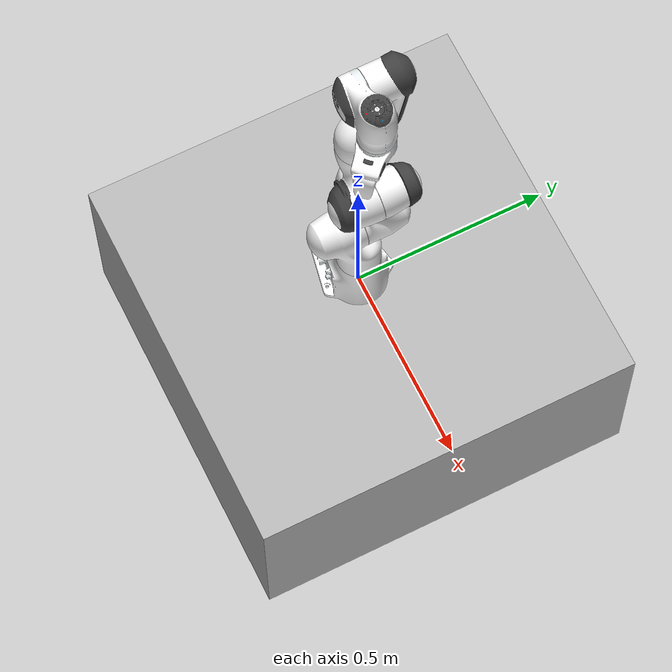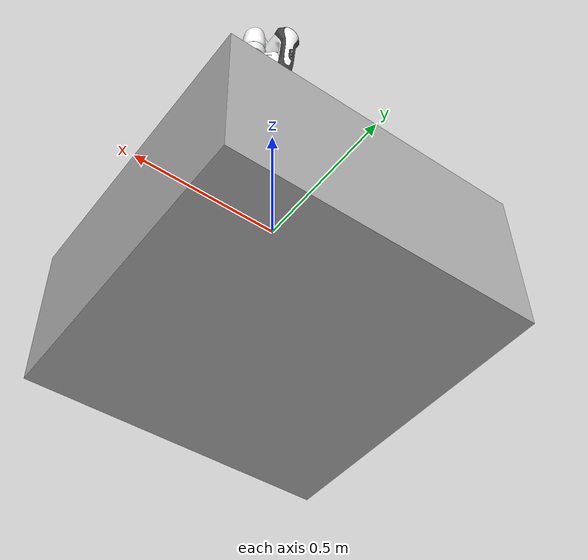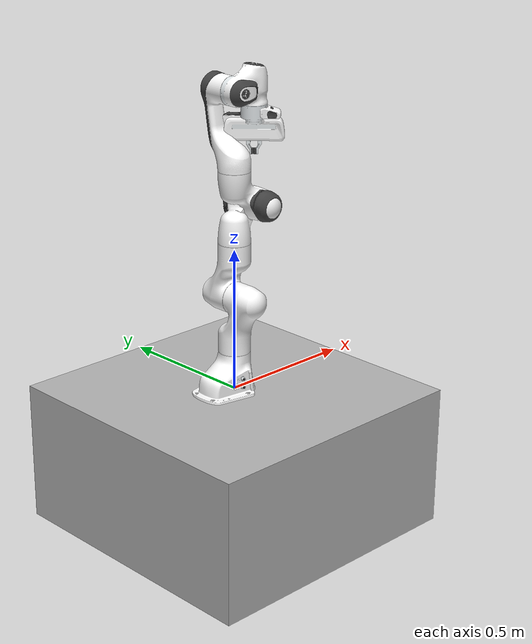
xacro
<?xml version="1.0" ?>
<robot name="panda" xmlns:xacro="http://www.ros.org/wiki/xacro">

    <xacro:arg name="ros2_control_hardware_type"                   default="${ros2_control_hardware_type}"/>
    <xacro:arg name="prefix"                                       default="panda_"/>
    <xacro:arg name="use_gripper"                                  default="true"/>
    <xacro:arg name="joint1_initial_position"                      default="0.0"/>
    <xacro:arg name="joint2_initial_position"                      default="-0.785"/>
    <xacro:arg name="joint3_initial_position"                      default="0.0"/>
    <xacro:arg name="joint4_initial_position"                      default="-2.356"/>
    <xacro:arg name="joint5_initial_position"                      default="0.0"/>
    <xacro:arg name="joint6_initial_position"                      default="1.571"/>
    <xacro:arg name="joint7_initial_position"                      default="0.785"/>
    <xacro:arg name="finger_joint1_initial_position"               default="0.0"/>
    <xacro:arg name="finger_joint2_initial_position"               default="0.0"/>

    <xacro:property name="ros2_control_hardware_type"              value="$(arg ros2_control_hardware_type)"/>
    <xacro:property name="prefix"                                  value="$(arg prefix)"/>
    <xacro:property name="use_gripper"                             value="$(arg use_gripper)"/>
    <xacro:property name="joint1_initial_position"                 value="$(arg joint1_initial_position)"/>
    <xacro:property name="joint2_initial_position"                 value="$(arg joint2_initial_position)"/>
    <xacro:property name="joint3_initial_position"                 value="$(arg joint3_initial_position)"/>
    <xacro:property name="joint4_initial_position"                 value="$(arg joint4_initial_position)"/>
    <xacro:property name="joint5_initial_position"                 value="$(arg joint5_initial_position)"/>
    <xacro:property name="joint6_initial_position"                 value="$(arg joint6_initial_position)"/>
    <xacro:property name="joint7_initial_position"                 value="$(arg joint7_initial_position)"/>
    <xacro:property name="finger_joint1_initial_position"          value="$(arg finger_joint1_initial_position)"/>
    <xacro:property name="finger_joint2_initial_position"          value="$(arg finger_joint2_initial_position)"/>

    <link name="world"/>
    <joint name="panda_world" type="fixed">
        <origin rpy="0 0 0" xyz="0 0 0.0" />
        <parent link="world" />
        <child link="panda_link0" />
    </joint>
    <link name="panda_link0">
        <visual>
            <geometry>
                <mesh filename="package://moveit_resources_panda_description/meshes/visual/link0.dae" />
            </geometry>
        </visual>
        <collision>
            <geometry>
                <mesh filename="package://moveit_resources_panda_description/meshes/collision/link0.stl" />
            </geometry>
        </collision>
        <inertial>
            <origin xyz="0 0 0" rpy="0 0 0" />
            <mass value="3.06357" />
            <inertia ixx="0.3" ixy="0.0" ixz="0.0" iyy="0.3" iyz="0.0" izz="0.3" />
        </inertial>
    </link>
    <link name="panda_link1">
        <visual>
            <geometry>
                <mesh filename="package://moveit_resources_panda_description/meshes/visual/link1.dae" />
            </geometry>
        </visual>
        <collision>
            <geometry>
                <mesh filename="package://moveit_resources_panda_description/meshes/collision/link1.stl" />
            </geometry>
        </collision>
        <inertial>
            <origin xyz="0 0 0" rpy="0 0 0" />
            <mass value="2.34471" />
            <inertia ixx="0.3" ixy="0.0" ixz="0.0" iyy="0.3" iyz="0.0" izz="0.3" />
        </inertial>
    </link>
    <joint name="panda_joint1" type="revolute">
        <safety_controller k_position="100.0" k_velocity="40.0" soft_lower_limit="-2.8973" soft_upper_limit="2.8973" />
        <origin rpy="0 0 0" xyz="0 0 0.333" />
        <parent link="panda_link0" />
        <child link="panda_link1" />
        <axis xyz="0 0 1" />
        <limit effort="87" lower="-2.9671" upper="2.9671" velocity="2.3925" />
    </joint>
    <link name="panda_link2">
        <visual>
            <geometry>
                <mesh filename="package://moveit_resources_panda_description/meshes/visual/link2.dae" />
            </geometry>
        </visual>
        <collision>
            <geometry>
                <mesh filename="package://moveit_resources_panda_description/meshes/collision/link2.stl" />
            </geometry>
        </collision>
        <inertial>
            <origin xyz="0 0 0" rpy="0 0 0" />
            <mass value="2.36414" />
            <inertia ixx="0.3" ixy="0.0" ixz="0.0" iyy="0.3" iyz="0.0" izz="0.3" />
        </inertial>
    </link>
    <joint name="panda_joint2" type="revolute">
        <safety_controller k_position="100.0" k_velocity="40.0" soft_lower_limit="-1.7628" soft_upper_limit="1.7628" />
        <origin rpy="-1.57079632679 0 0" xyz="0 0 0" />
        <parent link="panda_link1" />
        <child link="panda_link2" />
        <axis xyz="0 0 1" />
        <limit effort="87" lower="-1.8326" upper="1.8326" velocity="2.3925" />
    </joint>
    <link name="panda_link3">
        <visual>
            <geometry>
                <mesh filename="package://moveit_resources_panda_description/meshes/visual/link3.dae" />
            </geometry>
        </visual>
        <collision>
            <geometry>
                <mesh filename="package://moveit_resources_panda_description/meshes/collision/link3.stl" />
            </geometry>
        </collision>
        <inertial>
            <origin xyz="0 0 0" rpy="0 0 0" />
            <mass value="2.38050" />
            <inertia ixx="0.3" ixy="0.0" ixz="0.0" iyy="0.3" iyz="0.0" izz="0.3" />
        </inertial>
    </link>
    <joint name="panda_joint3" type="revolute">
        <safety_controller k_position="100.0" k_velocity="40.0" soft_lower_limit="-2.8973" soft_upper_limit="2.8973" />
        <origin rpy="1.57079632679 0 0" xyz="0 -0.316 0" />
        <parent link="panda_link2" />
        <child link="panda_link3" />
        <axis xyz="0 0 1" />
        <limit effort="87" lower="-2.9671" upper="2.9671" velocity="2.3925" />
    </joint>
    <link name="panda_link4">
        <visual>
            <geometry>
                <mesh filename="package://moveit_resources_panda_description/meshes/visual/link4.dae" />
            </geometry>
        </visual>
        <collision>
            <geometry>
                <mesh filename="package://moveit_resources_panda_description/meshes/collision/link4.stl" />
            </geometry>
        </collision>
        <inertial>
            <origin xyz="0 0 0" rpy="0 0 0" />
            <mass value="2.42754" />
            <inertia ixx="0.3" ixy="0.0" ixz="0.0" iyy="0.3" iyz="0.0" izz="0.3" />
        </inertial>
    </link>
    <joint name="panda_joint4" type="revolute">
        <safety_controller k_position="100.0" k_velocity="40.0" soft_lower_limit="-3.0718" soft_upper_limit="0.0175" />
        <origin rpy="1.57079632679 0 0" xyz="0.0825 0 0" />
        <parent link="panda_link3" />
        <child link="panda_link4" />
        <axis xyz="0 0 1" />
        <limit effort="87" lower="-3.1416" upper="0.0873" velocity="2.3925" />
    </joint>
    <link name="panda_link5">
        <visual>
            <geometry>
                <mesh filename="package://moveit_resources_panda_description/meshes/visual/link5.dae" />
            </geometry>
        </visual>
        <collision>
            <geometry>
                <mesh filename="package://moveit_resources_panda_description/meshes/collision/link5.stl" />
            </geometry>
        </collision>
        <inertial>
            <origin xyz="0 0 0" rpy="0 0 0" />
            <mass value="3.49611" />
            <inertia ixx="0.3" ixy="0.0" ixz="0.0" iyy="0.3" iyz="0.0" izz="0.3" />
        </inertial>
    </link>
    <joint name="panda_joint5" type="revolute">
        <safety_controller k_position="100.0" k_velocity="40.0" soft_lower_limit="-2.8973" soft_upper_limit="2.8973" />
        <origin rpy="-1.57079632679 0 0" xyz="-0.0825 0.384 0" />
        <parent link="panda_link4" />
        <child link="panda_link5" />
        <axis xyz="0 0 1" />
        <limit effort="12" lower="-2.9671" upper="2.9671" velocity="2.8710" />
    </joint>
    <link name="panda_link6">
        <visual>
            <geometry>
                <mesh filename="package://moveit_resources_panda_description/meshes/visual/link6.dae" />
            </geometry>
        </visual>
        <collision>
            <geometry>
                <mesh filename="package://moveit_resources_panda_description/meshes/collision/link6.stl" />
            </geometry>
        </collision>
        <inertial>
            <origin xyz="0 0 0" rpy="0 0 0" />
            <mass value="1.46736" />
            <inertia ixx="0.3" ixy="0.0" ixz="0.0" iyy="0.3" iyz="0.0" izz="0.3" />
        </inertial>
    </link>
    <joint name="panda_joint6" type="revolute">
        <safety_controller k_position="100.0" k_velocity="40.0" soft_lower_limit="-0.0175" soft_upper_limit="3.7525" />
        <origin rpy="1.57079632679 0 0" xyz="0 0 0" />
        <parent link="panda_link5" />
        <child link="panda_link6" />
        <axis xyz="0 0 1" />
        <limit effort="12" lower="-0.0873" upper="3.8223" velocity="2.8710" />
    </joint>
    <link name="panda_link7">
        <visual>
            <geometry>
                <mesh filename="package://moveit_resources_panda_description/meshes/visual/link7.dae" />
            </geometry>
        </visual>
        <collision>
            <geometry>
                <mesh filename="package://moveit_resources_panda_description/meshes/collision/link7.stl" />
            </geometry>
        </collision>
        <inertial>
            <origin xyz="0 0 0" rpy="0 0 0" />
            <mass value="0.45606" />
            <inertia ixx="0.3" ixy="0.0" ixz="0.0" iyy="0.3" iyz="0.0" izz="0.3" />
        </inertial>
    </link>
    <joint name="panda_joint7" type="revolute">
        <safety_controller k_position="100.0" k_velocity="40.0" soft_lower_limit="-2.8973" soft_upper_limit="2.8973" />
        <origin rpy="1.57079632679 0 0" xyz="0.088 0 0" />
        <parent link="panda_link6" />
        <child link="panda_link7" />
        <axis xyz="0 0 1" />
        <limit effort="12" lower="-2.9671" upper="2.9671" velocity="2.8710" />
    </joint>
    <link name="panda_link8" />
    <joint name="panda_joint8" type="fixed">
        <origin rpy="0 0 0" xyz="0 0 0.107" />
        <parent link="panda_link7" />
        <child link="panda_link8" />
        <axis xyz="0 0 0" />
    </joint>
    <joint name="panda_hand_joint" type="fixed">
        <parent link="panda_link8" />
        <child link="panda_hand" />
        <origin rpy="0 0 -0.785398163397" xyz="0 0 0" />
    </joint>
    <link name="panda_hand">
        <visual>
            <geometry>
                <mesh filename="package://moveit_resources_panda_description/meshes/visual/hand.dae" />
            </geometry>
        </visual>
        <collision>
            <geometry>
                <mesh filename="package://moveit_resources_panda_description/meshes/collision/hand.stl" />
            </geometry>
        </collision>
        <inertial>
            <origin xyz="0 0 0" rpy="0 0 0" />
            <mass value="0.67893" />
            <inertia ixx="0.3" ixy="0.0" ixz="0.0" iyy="0.3" iyz="0.0" izz="0.3" />
        </inertial>
    </link>
    <link name="panda_leftfinger">
        <visual>
            <geometry>
                <mesh filename="package://moveit_resources_panda_description/meshes/visual/finger.dae" />
            </geometry>
        </visual>
        <collision>
            <geometry>
                <mesh filename="package://moveit_resources_panda_description/meshes/collision/finger.stl" />
            </geometry>
        </collision>
        <inertial>
            <mass value="0.01053" />
            <inertia ixx="0.3" ixy="0.0" ixz="0.0" iyy="0.3" iyz="0.0" izz="0.3" />
        </inertial>
    </link>
    <link name="panda_rightfinger">
        <visual>
            <origin rpy="0 0 3.14159265359" xyz="0 0 0" />
            <geometry>
                <mesh filename="package://moveit_resources_panda_description/meshes/visual/finger.dae" />
            </geometry>
        </visual>
        <collision>
            <origin rpy="0 0 3.14159265359" xyz="0 0 0" />
            <geometry>
                <mesh filename="package://moveit_resources_panda_description/meshes/collision/finger.stl" />
            </geometry>
        </collision>
        <inertial>
            <mass value="0.01053" />
            <inertia ixx="0.3" ixy="0.0" ixz="0.0" iyy="0.3" iyz="0.0" izz="0.3" />
        </inertial>
    </link>
    <joint name="panda_finger_joint1" type="prismatic">
        <parent link="panda_hand" />
        <child link="panda_leftfinger" />
        <origin rpy="0 0 0" xyz="0 0 0.0584" />
        <axis xyz="0 1 0" />
        <limit effort="20" lower="0.0" upper="0.04" velocity="0.2" />
    </joint>
    <joint name="panda_finger_joint2" type="prismatic">
        <parent link="panda_hand" />
        <child link="panda_rightfinger" />
        <origin rpy="0 0 0" xyz="0 0 0.0584" />
        <axis xyz="0 -1 0" />
        <limit effort="20" lower="0.0" upper="0.04" velocity="0.2" />
        <mimic joint="panda_finger_joint1" />
    </joint>
    <joint name="panda_finger_joint2_mimic" type="fixed">
        <parent link="world" />
        <child link="random" />
        </joint>
    <link name="random"/>
    <link name="ground_plane_box">
        <visual>
            <origin xyz="0 0 0" rpy="0 0 0"/>
            <geometry>
                <box size="1.0 1.0 0.5"/>
            </geometry>
            <material name="Grey">
                <color rgba="0.7 0.7 0.7 1.0"/>
            </material>
        </visual>
        <collision>
            <origin xyz="0 0 0" rpy="0 0 0"/>
            <geometry>
                <box size="1.0 1.0 0.5"/>
            </geometry>
        </collision>
    </link>

    <joint name="ground_plane_box" type="fixed">
        <parent link="world" />
        <child link="ground_plane_box" />
        <origin xyz="0 0 -0.25" rpy="0 0 0" />
    </joint>
    <xacro:include filename="$(find arm_sim_scenario)/urdf/control.urdf.xacro" />
    <xacro:panda_ros2_control name="PandaFakeSystem" initial_positions_file="$(find moveit_resources_panda_moveit_config)/config/initial_positions.yaml" ros2_control_hardware_type="$(arg ros2_control_hardware_type)"/>
</robot>
